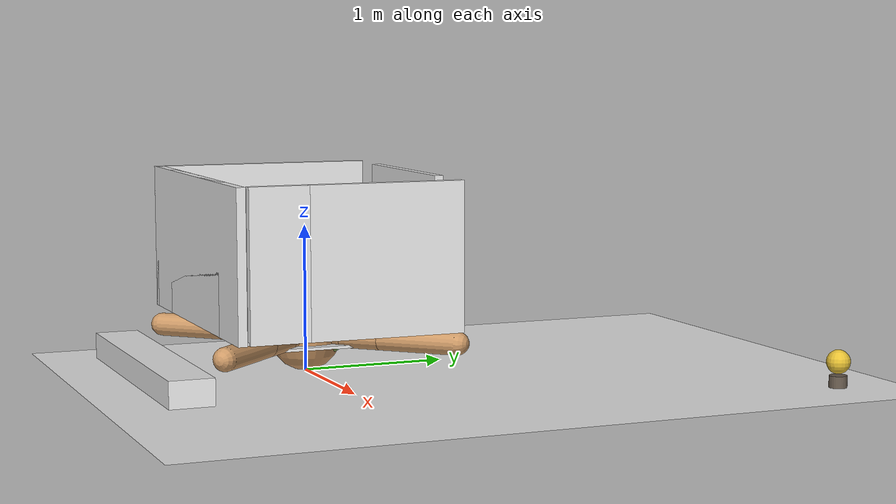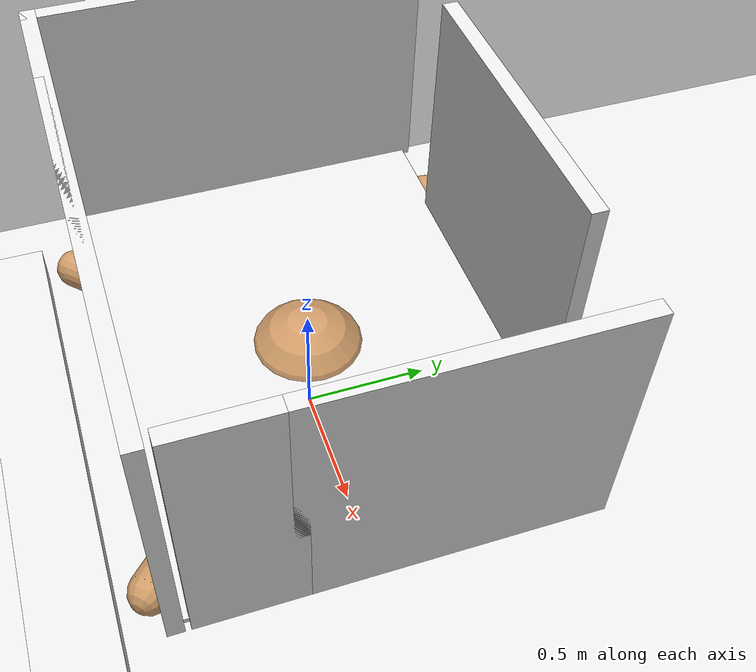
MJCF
<!--
  SEA Kindergarten + EMA (ant). Revised layout: 5x8 yard, pen +36cm, crib +18cm, two charging pads.
  Crib, play pen, play yard; life model in Python (charging on either pad).
-->
<mujoco model="kindergarten_ema">
  <compiler angle="radian" coordinate="local" inertiafromgeom="true"/>
  <option timestep="0.002" gravity="0 0 -9.81" integrator="implicit">
    <flag contact="enable"/>
  </option>
  <default>
    <joint armature="0.01" damping="1"/>
    <geom condim="3" friction="0.8 0.4 0.4" margin="0.001" rgba="0.9 0.9 0.9 1"/>
  </default>
  <asset>
    <texture name="floor_tex" type="2d" builtin="checker" rgb1="0.85 0.85 0.85" rgb2="0.7 0.7 0.7" width="64" height="64"/>
    <material name="floor_mat" texture="floor_tex" texrepeat="8 12" reflectance="0.1"/>
    <material name="crib_mat" rgba="0.95 0.95 0.9 1"/>
    <material name="charging_mat" rgba="0.3 0.7 0.4 0.6"/>
    <material name="pen_mat" rgba="0.88 0.88 0.92 1"/>
    <material name="fence_mat" rgba="0.6 0.55 0.5 1"/>
  </asset>
  <worldbody>
    <light name="main" pos="0 0 3" dir="0 0 -1" diffuse="1 1 1" specular="0.2 0.2 0.2"/>
    <geom name="play_yard" type="plane" pos="0 0 0" size="2.5 4 0.01" material="floor_mat"/>
    <body name="play_pen" pos="0 0 0.37">
      <geom name="pen_floor" type="box" size="1 0.75 0.01" pos="0 0 0" material="pen_mat"/>
    </body>
    <body name="fence_n1" pos="0 -0.75 0.86"><geom name="fence_n1" type="box" size="0.6 0.03 0.5" material="fence_mat"/></body>
    <body name="fence_n2" pos="0 0.75 0.86"><geom name="fence_n2" type="box" size="0.6 0.03 0.5" material="fence_mat"/></body>
    <body name="fence_s" pos="0 0 0.86"><geom name="fence_s" type="box" size="1.03 0.03 0.5" pos="0 -0.75 0" material="fence_mat"/></body>
    <body name="fence_e1" pos="1 0.2 0.86"><geom name="fence_e1" type="box" size="0.03 0.55 0.5" material="fence_mat"/></body>
    <body name="fence_e2" pos="1 -0.5 0.86"><geom name="fence_e2" type="box" size="0.03 0.2 0.5" material="fence_mat"/></body>
    <body name="fence_w" pos="-1 0 0.86"><geom name="fence_w" type="box" size="0.03 0.78 0.5" material="fence_mat"/></body>
    <body name="crib" pos="0 0 0.19">
      <geom name="crib_floor" type="box" size="0.3 0.4 0.01" pos="0 0 0" material="crib_mat"/>
      <geom name="charging_pad_1" type="box" size="0.05 0.05 0.005" pos="-0.12 -0.15 0.005" material="charging_mat" contype="0" conaffinity="0"/>
      <geom name="charging_pad_2" type="box" size="0.05 0.05 0.005" pos="0.12 0.15 0.005" material="charging_mat" contype="0" conaffinity="0"/>
      <site name="charging_zone_1" pos="-0.12 -0.15 0.02" size="0.08" rgba="0.2 0.8 0.3 0.4"/>
      <site name="charging_zone_2" pos="0.12 0.15 0.02" size="0.08" rgba="0.2 0.8 0.3 0.4"/>
    </body>
    <body name="crib_ramp" pos="0.12 0 0.27">
      <geom name="ramp" type="box" size="0.18 0.4 0.01" euler="0 -0.46 0" material="pen_mat"/>
    </body>
    <body name="terrace_step1" pos="0 -1.08 0.09"><geom name="terrace1" type="box" size="1.03 0.15 0.09" material="pen_mat"/></body>
    <body name="sound_flower" pos="2 3 0">
      <geom name="flower_base" type="cylinder" size="0.06 0.04" pos="0 0 0.04" rgba="0.4 0.35 0.3 1"/>
      <body name="flower_head" pos="0 0 0.12">
        <joint name="flower_hinge" type="hinge" axis="0 0 1" damping="0.1"/>
        <geom name="flower_head_geom" type="sphere" size="0.08" pos="0 0 0.05" rgba="0.9 0.75 0.2 1"/>
        <site name="flower_anchor" pos="0 0 0.08" size="0.03" rgba="0.9 0.7 0.2 0.5"/>
      </body>
    </body>
    <!-- EMA: ant in crib (center 0,0; standing on crib floor 0.18) -->
    <body name="torso" pos="0 0 0.25">
      <geom name="torso_geom" size="0.25" type="sphere" density="5" friction="1 0.5 0.5" rgba="0.8 0.6 0.4 1"/>
      <joint name="root" type="free"/>
      <body name="front_left_leg" pos="0 0 0">
        <geom fromto="0 0 0 0.2 0.2 0" size="0.08" type="capsule" density="5" friction="1 0.5 0.5" rgba="0.8 0.6 0.4 1"/>
        <body name="aux_1" pos="0.2 0.2 0">
          <joint name="hip_1" type="hinge" axis="0 0 1" range="-0.52 0.52"/>
          <geom fromto="0 0 0 0.2 0.2 0" size="0.08" type="capsule" density="5" friction="1 0.5 0.5" rgba="0.8 0.6 0.4 1"/>
          <body pos="0.2 0.2 0">
            <joint name="ankle_1" type="hinge" axis="-1 1 0" range="0.52 1.22"/>
            <geom fromto="0 0 0 0.4 0.4 0" size="0.08" type="capsule" density="5" friction="1 0.5 0.5" rgba="0.8 0.6 0.4 1"/>
          </body>
        </body>
      </body>
      <body name="front_right_leg" pos="0 0 0">
        <geom fromto="0 0 0 -0.2 0.2 0" size="0.08" type="capsule" density="5" friction="1 0.5 0.5" rgba="0.8 0.6 0.4 1"/>
        <body name="aux_2" pos="-0.2 0.2 0">
          <joint name="hip_2" type="hinge" axis="0 0 1" range="-0.52 0.52"/>
          <geom fromto="0 0 0 -0.2 0.2 0" size="0.08" type="capsule" density="5" friction="1 0.5 0.5" rgba="0.8 0.6 0.4 1"/>
          <body pos="-0.2 0.2 0">
            <joint name="ankle_2" type="hinge" axis="1 1 0" range="-1.22 -0.52"/>
            <geom fromto="0 0 0 -0.4 0.4 0" size="0.08" type="capsule" density="5" friction="1 0.5 0.5" rgba="0.8 0.6 0.4 1"/>
          </body>
        </body>
      </body>
      <body name="back_leg" pos="0 0 0">
        <geom fromto="0 0 0 -0.2 -0.2 0" size="0.08" type="capsule" density="5" friction="1 0.5 0.5" rgba="0.8 0.6 0.4 1"/>
        <body name="aux_3" pos="-0.2 -0.2 0">
          <joint name="hip_3" type="hinge" axis="0 0 1" range="-0.52 0.52"/>
          <geom fromto="0 0 0 -0.2 -0.2 0" size="0.08" type="capsule" density="5" friction="1 0.5 0.5" rgba="0.8 0.6 0.4 1"/>
          <body pos="-0.2 -0.2 0">
            <joint name="ankle_3" type="hinge" axis="-1 1 0" range="-1.22 -0.52"/>
            <geom fromto="0 0 0 -0.4 -0.4 0" size="0.08" type="capsule" density="5" friction="1 0.5 0.5" rgba="0.8 0.6 0.4 1"/>
          </body>
        </body>
      </body>
      <body name="right_back_leg" pos="0 0 0">
        <geom fromto="0 0 0 0.2 -0.2 0" size="0.08" type="capsule" density="5" friction="1 0.5 0.5" rgba="0.8 0.6 0.4 1"/>
        <body name="aux_4" pos="0.2 -0.2 0">
          <joint name="hip_4" type="hinge" axis="0 0 1" range="-0.52 0.52"/>
          <geom fromto="0 0 0 0.2 -0.2 0" size="0.08" type="capsule" density="5" friction="1 0.5 0.5" rgba="0.8 0.6 0.4 1"/>
          <body pos="0.2 -0.2 0">
            <joint name="ankle_4" type="hinge" axis="1 1 0" range="0.52 1.22"/>
            <geom fromto="0 0 0 0.4 -0.4 0" size="0.08" type="capsule" density="5" friction="1 0.5 0.5" rgba="0.8 0.6 0.4 1"/>
          </body>
        </body>
      </body>
    </body>
  </worldbody>
  <actuator>
    <motor name="flower_motor" joint="flower_hinge" ctrlrange="-1 1" gear="5"/>
    <motor name="hip_4" joint="hip_4" ctrlrange="-1 1" gear="150"/>
    <motor name="ankle_4" joint="ankle_4" ctrlrange="-1 1" gear="150"/>
    <motor name="hip_1" joint="hip_1" ctrlrange="-1 1" gear="150"/>
    <motor name="ankle_1" joint="ankle_1" ctrlrange="-1 1" gear="150"/>
    <motor name="hip_2" joint="hip_2" ctrlrange="-1 1" gear="150"/>
    <motor name="ankle_2" joint="ankle_2" ctrlrange="-1 1" gear="150"/>
    <motor name="hip_3" joint="hip_3" ctrlrange="-1 1" gear="150"/>
    <motor name="ankle_3" joint="ankle_3" ctrlrange="-1 1" gear="150"/>
  </actuator>
</mujoco>
